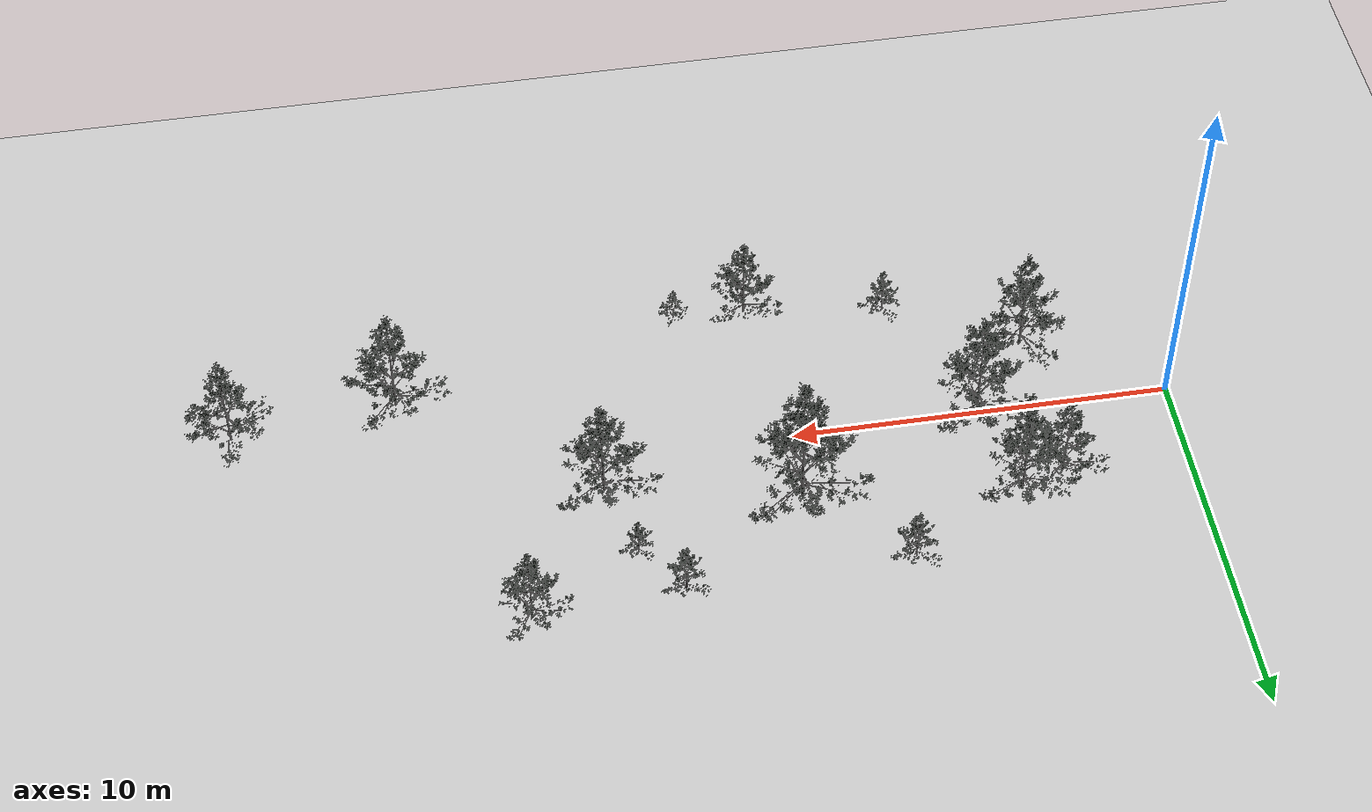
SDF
<sdf version="1.6">
 <world name="default">
  <light name="sun" type="directional">
   <pose>0 0 10 0 -0 0</pose>
   <diffuse>0.8 0.8 0.8 1</diffuse>
   <specular>0.1 0.1 0.1 1</specular>
   <attenuation>
    <range>1000</range>
    <constant>0.9</constant>
    <linear>0.01</linear>
    <quadratic>0.001</quadratic>
   </attenuation>
   <direction>-0.5 0.5 -1</direction>
  </light>
  <model name="ground_plane">
   <static>1</static>
   <link name="link">
    <collision name="collision">
     <geometry><plane><normal>0 0 1</normal><size>100 100</size></plane></geometry>
     <surface><friction><ode><mu>100</mu><mu2>50</mu2></ode></friction></surface>
    </collision>
    <visual name="visual">
     <cast_shadows>0</cast_shadows>
     <geometry><plane><normal>0 0 1</normal><size>100 100</size></plane></geometry>
     <material>
      <script><uri>file://media/materials/scripts/gazebo.material</uri><name>Gazebo/Grey</name></script>
     </material>
    </visual>
   </link>
  </model>
  <gravity>0 0 -9.8</gravity>
  <magnetic_field>6e-06 2.3e-05 -4.2e-05</magnetic_field>
  <atmosphere type="adiabatic"/>
  <physics name="default_physics" default="0" type="ode">
   <max_step_size>0.001</max_step_size>
   <real_time_factor>1</real_time_factor>
   <real_time_update_rate>1000</real_time_update_rate>
  </physics>
  <scene><ambient>0.4 0.4 0.4 1</ambient><background>0.7 0.7 0.7 1</background><shadows>1</shadows></scene>
  <spherical_coordinates>
   <surface_model>EARTH_WGS84</surface_model>
   <latitude_deg>0</latitude_deg>
   <longitude_deg>0</longitude_deg>
   <elevation>0</elevation>
   <heading_deg>0</heading_deg>
  </spherical_coordinates>
  <model name="forest">
   <link name="tree1">
    <pose>5 0 0 0 0 0</pose>
    <collision name="collision">
     <geometry><mesh><uri>file://tree.dae</uri><scale>1 1 1</scale></mesh></geometry>
    </collision>
    <visual name="visual">
     <geometry><mesh><uri>file://tree.dae</uri><scale>1 1 1</scale></mesh></geometry>
     <cast_shadows>false</cast_shadows>
    </visual>
   </link>
   <link name="tree2">
    <pose>10 2 0 0 0 0</pose>
    <collision name="collision">
     <geometry><mesh><uri>file://tree.dae</uri><scale>1.2 1.2 1.2</scale></mesh></geometry>
    </collision>
    <visual name="visual">
     <geometry><mesh><uri>file://tree.dae</uri><scale>1.2 1.2 1.2</scale></mesh></geometry>
     <cast_shadows>false</cast_shadows>
    </visual>
   </link>
   <link name="tree3">
    <pose>15 1 0 0 0 0</pose>
    <collision name="collision">
     <geometry><mesh><uri>file://tree.dae</uri><scale>1.0 0.9 0.9</scale></mesh></geometry>
    </collision>
    <visual name="visual">
     <geometry><mesh><uri>file://tree.dae</uri><scale>1.0 0.9 0.9</scale></mesh></geometry>
     <cast_shadows>false</cast_shadows>
    </visual>
   </link>
   <link name="tree4">
    <pose>10.56491150975 -4.5732603649 0 0 0 1.9963205288</pose>
    <visual name="visual">
     <geometry>
      <mesh><uri>file://tree.dae</uri><scale>0.733442264282 0.733442264282 0.733442264282</scale></mesh>
     </geometry>
    </visual>
    <collision name="collision">
     <geometry>
      <mesh><uri>file://tree.dae</uri><scale>0.733442264282 0.733442264282 0.733442264282</scale></mesh>
     </geometry>
     <max_contacts>0</max_contacts>
    </collision>
   </link>
   <link name="tree5">
    <pose>4.39556737981 2.63027597571 0 0 0 6.09987576758</pose>
    <visual name="visual">
     <geometry>
      <mesh><uri>file://tree.dae</uri><scale>0.897016208652 0.897016208652 0.897016208652</scale></mesh>
     </geometry>
    </visual>
    <collision name="collision">
     <geometry>
      <mesh><uri>file://tree.dae</uri><scale>0.897016208652 0.897016208652 0.897016208652</scale></mesh>
     </geometry>
     <max_contacts>0</max_contacts>
    </collision>
   </link>
   <link name="tree6">
    <pose>7.665096179163 4.34393129803 0 0 0 3.70492607598</pose>
    <visual name="visual">
     <geometry>
      <mesh><uri>file://tree.dae</uri><scale>0.488105527048 0.488105527048 0.488105527048</scale></mesh>
     </geometry>
    </visual>
    <collision name="collision">
     <geometry>
      <mesh><uri>file://tree.dae</uri><scale>0.488105527048 0.488105527048 0.488105527048</scale></mesh>
     </geometry>
     <max_contacts>0</max_contacts>
    </collision>
   </link>
   <link name="tree7">
    <pose>6.893826977245 -3.91853483775 0 0 0 3.32872169369</pose>
    <visual name="visual">
     <geometry>
      <mesh><uri>file://tree.dae</uri><scale>0.439989867526 0.439989867526 0.439989867526</scale></mesh>
     </geometry>
    </visual>
    <collision name="collision">
     <geometry>
      <mesh><uri>file://tree.dae</uri><scale>0.439989867526 0.439989867526 0.439989867526</scale></mesh>
     </geometry>
     <max_contacts>0</max_contacts>
    </collision>
   </link>
   <link name="tree8">
    <pose>20.140694815077 -2.62963712714 0 0 0 4.47828028661</pose>
    <visual name="visual">
     <geometry>
      <mesh><uri>file://tree.dae</uri><scale>0.958417688567 0.958417688567 0.958417688567</scale></mesh>
     </geometry>
    </visual>
    <collision name="collision">
     <geometry>
      <mesh><uri>file://tree.dae</uri><scale>0.958417688567 0.958417688567 0.958417688567</scale></mesh>
     </geometry>
     <max_contacts>0</max_contacts>
    </collision>
   </link>
   <link name="tree9">
    <pose>24.42633848363 -2.15008817387 0 0 0 5.07681165044</pose>
    <visual name="visual">
     <geometry>
      <mesh><uri>file://tree.dae</uri><scale>0.838701998828 0.838701998828 0.838701998828</scale></mesh>
     </geometry>
    </visual>
    <collision name="collision">
     <geometry>
      <mesh><uri>file://tree.dae</uri><scale>0.838701998828 0.838701998828 0.838701998828</scale></mesh>
     </geometry>
     <max_contacts>0</max_contacts>
    </collision>
   </link>
   <link name="tree10">
    <pose>12.45449822141 -4.55109488901 0 0 0 4.71050575167</pose>
    <visual name="visual">
     <geometry>
      <mesh><uri>file://tree.dae</uri><scale>0.300184614023 0.300184614023 0.300184614023</scale></mesh>
     </geometry>
    </visual>
    <collision name="collision">
     <geometry>
      <mesh><uri>file://tree.dae</uri><scale>0.300184614023 0.300184614023 0.300184614023</scale></mesh>
     </geometry>
     <max_contacts>0</max_contacts>
    </collision>
   </link>
   <link name="tree11">
    <pose>14.530321299445 3.09824748416 0 0 0 3.57830723508</pose>
    <visual name="visual">
     <geometry>
      <mesh><uri>file://tree.dae</uri><scale>0.351736646812 0.351736646812 0.351736646812</scale></mesh>
     </geometry>
    </visual>
    <collision name="collision">
     <geometry>
      <mesh><uri>file://tree.dae</uri><scale>0.351736646812 0.351736646812 0.351736646812</scale></mesh>
     </geometry>
     <max_contacts>0</max_contacts>
    </collision>
   </link>
   <link name="tree12">
    <pose>17.31360193746 4.64103183515 0 0 0 0.309977199423</pose>
    <visual name="visual">
     <geometry>
      <mesh><uri>file://tree.dae</uri><scale>0.715923035201 0.715923035201 0.715923035201</scale></mesh>
     </geometry>
    </visual>
    <collision name="collision">
     <geometry>
      <mesh><uri>file://tree.dae</uri><scale>0.715923035201 0.715923035201 0.715923035201</scale></mesh>
     </geometry>
     <max_contacts>0</max_contacts>
    </collision>
   </link>
   <link name="tree13">
    <pose>13.52175231002 4.4063359304 0 0 0 3.80906994379</pose>
    <visual name="visual">
     <geometry>
      <mesh><uri>file://tree.dae</uri><scale>0.464676973547 0.464676973547 0.464676973547</scale></mesh>
     </geometry>
    </visual>
    <collision name="collision">
     <geometry>
      <mesh><uri>file://tree.dae</uri><scale>0.464676973547 0.464676973547 0.464676973547</scale></mesh>
     </geometry>
     <max_contacts>0</max_contacts>
    </collision>
   </link>
   <link name="tree14">
    <pose>3.37603246531 2.29203005288 0 0 0 4.21598482318</pose>
    <visual name="visual">
     <geometry>
      <mesh><uri>file://tree.dae</uri><scale>0.754819412655 0.754819412655 0.754819412655</scale></mesh>
     </geometry>
    </visual>
    <collision name="collision">
     <geometry>
      <mesh><uri>file://tree.dae</uri><scale>0.754819412655 0.754819412655 0.754819412655</scale></mesh>
     </geometry>
     <max_contacts>0</max_contacts>
    </collision>
   </link>
   <link name="tree15">
    <pose>3.39494066047 -2.09708803731 0 0 0 5.47016774703</pose>
    <visual name="visual">
     <geometry>
      <mesh><uri>file://tree.dae</uri><scale>0.929843560689 0.929843560689 0.929843560689</scale></mesh>
     </geometry>
    </visual>
    <collision name="collision">
     <geometry>
      <mesh><uri>file://tree.dae</uri><scale>0.929843560689 0.929843560689 0.929843560689</scale></mesh>
     </geometry>
     <max_contacts>0</max_contacts>
    </collision>
   </link>
   <static>true</static>
  </model>
 </world>
</sdf>
